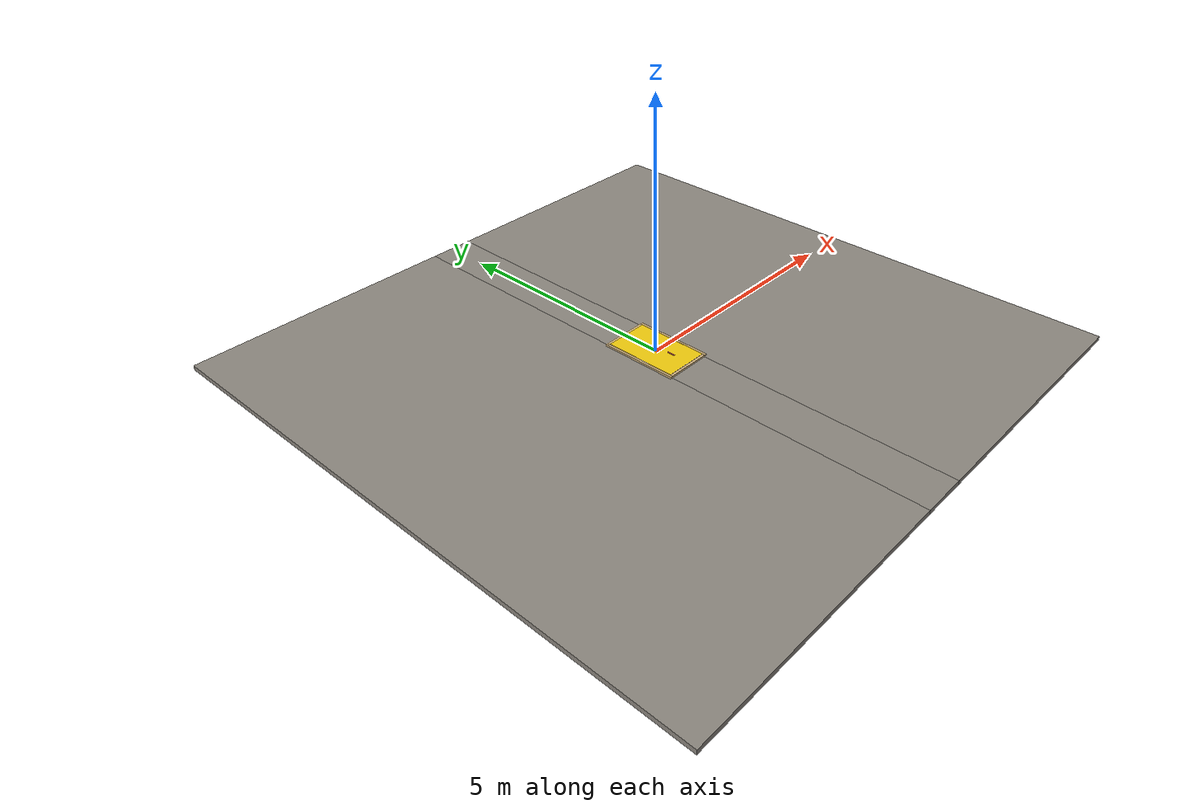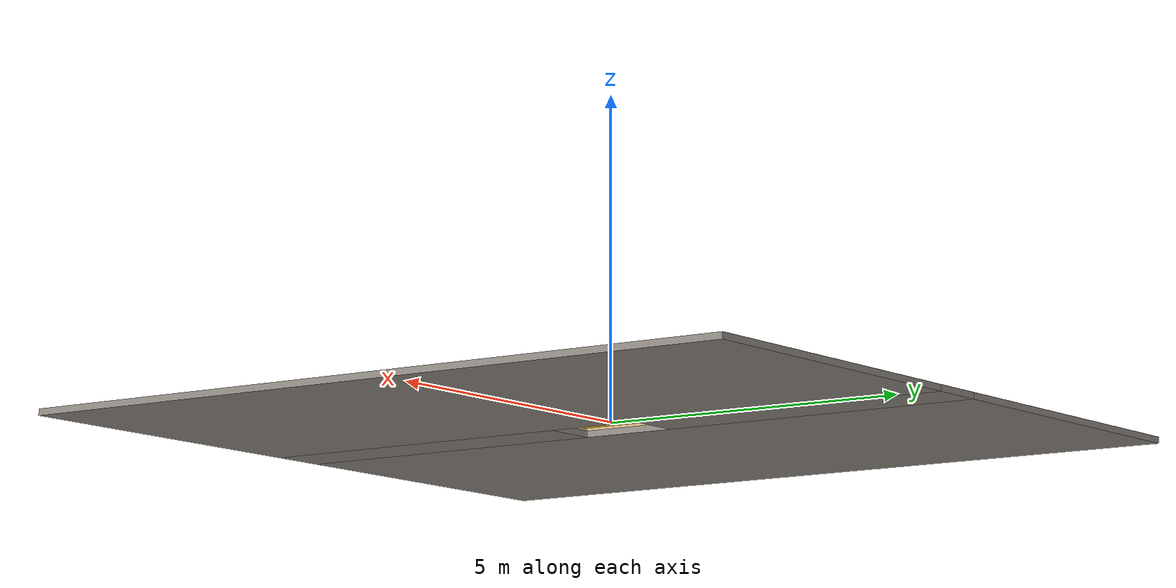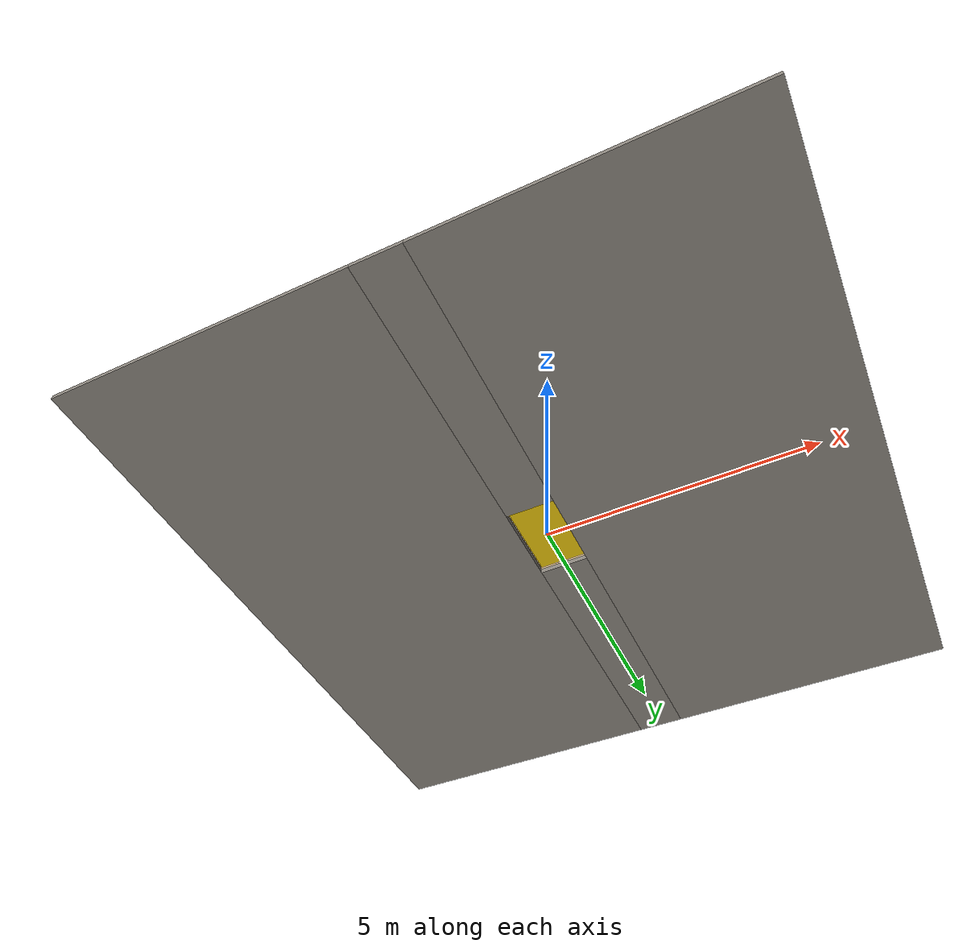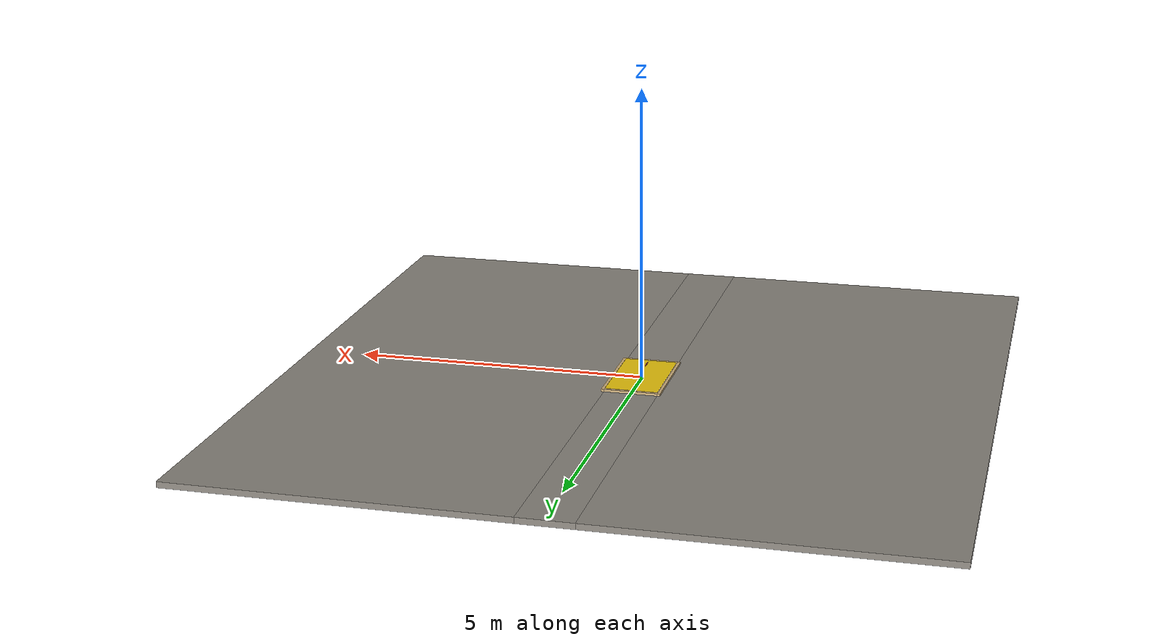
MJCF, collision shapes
<?xml version="1.0" ?>
<mujoco model="db0976_hatch_floor_minimal">
  <compiler angle="radian" meshdir="../../hardware" texturedir="../../textures" autolimits="true" inertiafromgeom="false"/>
  <option timestep="0.002" integrator="implicitfast" cone="elliptic" impratio="10" noslip_iterations="3">
    <flag multiccd="enable"/>
  </option>
  <size memory="16M"/>
  <default>
    <geom condim="4" solref="0.005 1" solimp="0.95 0.99 0.001"/>
    <joint solreflimit="0.005 1" solimplimit="0.95 0.99 0.001"/>
    <tendon solreflimit="0.005 1"/>
    <equality solref="0.002 1"/>
  </default>
  <visual>
    <headlight ambient="0.4 0.4 0.4" diffuse="0.7 0.7 0.7" specular="0.2 0.2 0.2"/>
    <quality shadowsize="4096"/>
    <map znear="0.01" zfar="60"/>
  </visual>
  <asset>
    <mesh name="pull_1e5d69a91a" file="pull_1e5d69a91a.obj"/>
    <material name="mat_floor" rgba="0.55 0.53 0.5 1" specular="0.2" shininess="0.15" reflectance="0"/>
    <material name="mat_wall" rgba="0.78 0.76 0.7 1" specular="0.2" shininess="0.1" reflectance="0"/>
    <material name="mat_pit" rgba="0.3 0.3 0.3 1" specular="0.2" shininess="0.1" reflectance="0"/>
    <material name="mat_frame" rgba="0.82 0.7 0.5 1" specular="0.2" shininess="0.45" reflectance="0"/>
    <material name="mat_leaf" rgba="0.95 0.8 0.05 1" specular="0.23" shininess="0.51" reflectance="0.02"/>
    <material name="mat_hinge" rgba="0.65 0.66 0.68 1" specular="0.74" shininess="0.5" reflectance="0.36"/>
    <material name="mat_rivet" rgba="0.55 0.56 0.58 1" specular="0.8" shininess="0.55" reflectance="0.4"/>
    <material name="mat_op_stainless" rgba="0.75 0.76 0.77 1" specular="0.8" shininess="0.65" reflectance="0.4"/>
    <material name="mat_strut" rgba="0.75 0.76 0.77 1" specular="0.8" shininess="0.65" reflectance="0.4"/>
    <texture name="skybox" type="skybox" builtin="gradient" rgb1="0.6 0.7 0.85" rgb2="0.9 0.92 0.95" width="256" height="256"/>
  </asset>
  <worldbody>
    <light name="sun" pos="1.5 -2.5 4" dir="-0.3 0.5 -0.8" directional="true" diffuse="0.8 0.8 0.8" specular="0.3 0.3 0.3" castshadow="true"/>
    <light name="fill" pos="-1.5 2.5 3" dir="0.3 -0.5 -0.7" directional="true" diffuse="0.35 0.35 0.4" castshadow="false"/>
    <camera name="robot_view" pos="0 -2.040625 1.326375" xyaxes="1 0 0 0 0.26963 0.962964" fovy="52"/>
    <camera name="far_view" pos="0 2.040625 1.326375" xyaxes="-1 0 0 0 -0.26963 0.962964" fovy="52"/>
    <camera name="iso" pos="1.550875 -1.714125 1.652875" xyaxes="0.741536 0.670913 0 -0.242917 0.268487 0.932151" fovy="46"/>
    <camera name="detail_handle" pos="0.35 0.268 -0.2425" xyaxes="0.843661 0.536875 0 -0.426006 0.669439 0.608581" fovy="38"/>
    <geom name="floor_a" type="box" size="2.7725 6 0.05" pos="-3.2275 0 -0.05" material="mat_floor" group="0" contype="1" conaffinity="1" friction="0.6 0.005 0.0001" density="2400"/>
    <geom name="floor_b" type="box" size="2.7725 6 0.05" pos="3.2275 0 -0.05" material="mat_floor" group="0" contype="1" conaffinity="1" friction="0.6 0.005 0.0001" density="2400"/>
    <geom name="floor_c" type="box" size="0.455 2.6225 0.05" pos="0 -3.3775 -0.05" material="mat_floor" group="0" contype="1" conaffinity="1" friction="0.6 0.005 0.0001" density="2400"/>
    <geom name="floor_d" type="box" size="0.455 2.6225 0.05" pos="0 3.3775 -0.05" material="mat_floor" group="0" contype="1" conaffinity="1" friction="0.6 0.005 0.0001" density="2400"/>
    <geom name="curb_l" type="box" size="0.025 0.805 0.02" pos="-0.48 0 0.02" material="mat_frame" group="0" contype="1" conaffinity="1" friction="0.6 0.005 0.0001" density="7850"/>
    <geom name="curb_r" type="box" size="0.025 0.805 0.02" pos="0.48 0 0.02" material="mat_frame" group="0" contype="1" conaffinity="1" friction="0.6 0.005 0.0001" density="7850"/>
    <geom name="curb_n" type="box" size="0.455 0.025 0.02" pos="0 -0.78 0.02" material="mat_frame" group="0" contype="1" conaffinity="1" friction="0.6 0.005 0.0001" density="7850"/>
    <geom name="curb_f" type="box" size="0.455 0.025 0.02" pos="0 0.78 0.02" material="mat_frame" group="0" contype="1" conaffinity="1" friction="0.6 0.005 0.0001" density="7850"/>
    <site name="approach_point" pos="0 -1.5 0" quat="1 0 0 0" size="0.05" rgba="0.2 0.9 0.2 0.5" group="4"/>
    <site name="goal_point" pos="0 0 -1" quat="1 0 0 0" size="0.05" rgba="0.2 0.9 0.2 0.5" group="4"/>
    <site name="door_plane_center" pos="0 0 0" quat="1 0 0 0" size="0.02" rgba="0.2 0.9 0.2 0.5" group="4"/>
    <body name="hatch" pos="0 0.755 0.04">
      <inertial pos="0 -0.757435 0.00018" mass="65.835" quat="0.707107 -0.000125 -0.000125 -0.707107" diaginertia="4.414573482 12.34795697 16.758725685"/>
      <joint name="hatch_hinge" type="hinge" axis="-1 0 0" pos="0 0.01 0" limited="true" range="0 1.308997" damping="30.677737" frictionloss="1.208602" stiffness="19.5" springref="-3.333333" armature="0.02"/>
      <geom name="hatch_slab" type="box" size="0.45 0.751 0.003" pos="0 -0.755 0" material="mat_leaf" group="0" contype="1" conaffinity="1" friction="0.6 0.005 0.0001" density="1"/>
      <geom name="hatch_pull_p" type="mesh" mesh="pull_1e5d69a91a" pos="0 -1.1325 0.006" quat="0.707107 -0.707107 0 0" material="mat_op_stainless" group="1" contype="0" conaffinity="0" density="3000"/>
      <geom name="hatch_pull_col_p" type="capsule" size="0.0095 0.08" pos="0 -1.1325 0.066" quat="0.707107 0.707107 0 0" material="mat_op_stainless" group="3" contype="1" conaffinity="1" rgba="0.8 0.3 0.3 0.25" friction="0.7 0.01 0.0001" density="3000"/>
      <site name="hatch_pull_grip_p" pos="0 0.063 -1.1325" quat="1 0 0 0" size="0.012" rgba="0.2 0.9 0.2 0.5" group="4"/>
    </body>
  </worldbody>
  <sensor>
    <jointpos name="hatch_hinge_pos" joint="hatch_hinge"/>
    <jointvel name="hatch_hinge_vel" joint="hatch_hinge"/>
  </sensor>
</mujoco>
